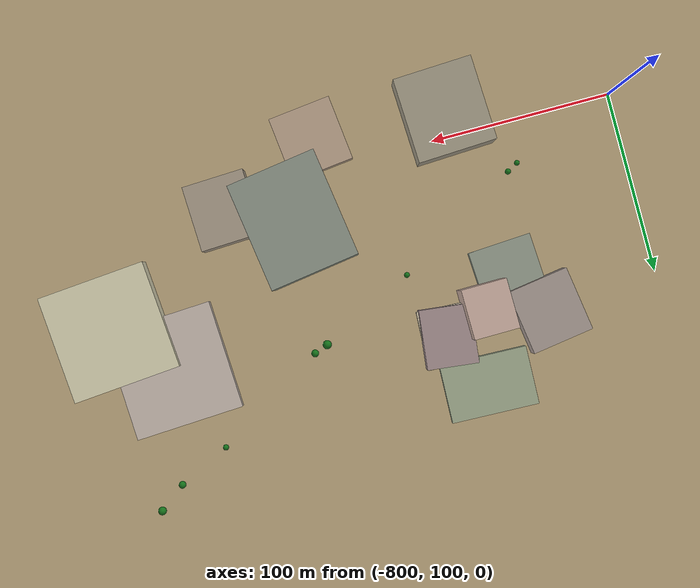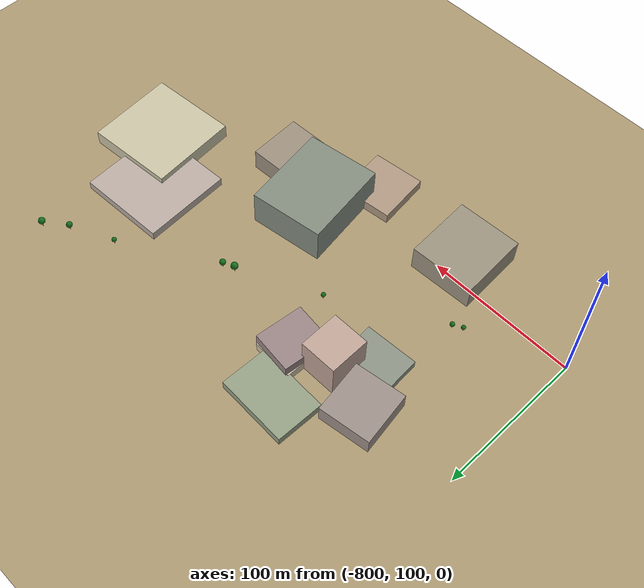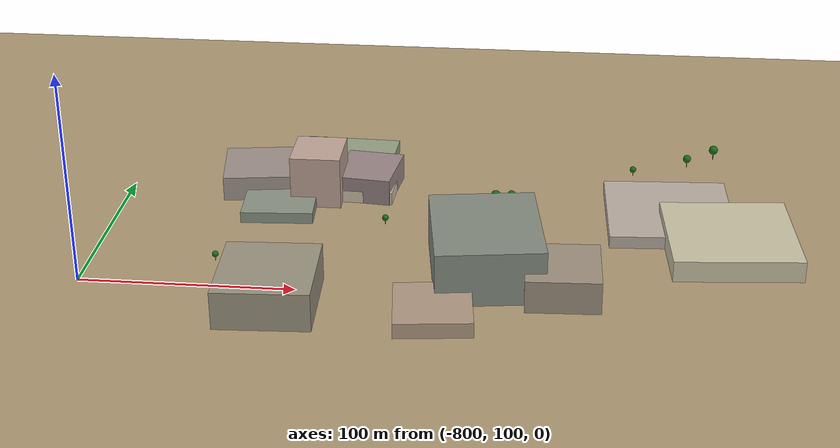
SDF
<sdf version="1.9">
 <world name="crossroad_world">
  <model name="ground_plane">
   <static>true</static>
   <pose>0 0 -0.05 0 0 0</pose>
   <link name="link">
    <collision name="collision">
     <geometry><plane><normal>0 0 1</normal><size>10000 10000</size></plane></geometry>
    </collision>
    <visual name="visual">
     <geometry><plane><normal>0 0 1</normal><size>15000 15000</size></plane></geometry>
     <material><ambient>0.68 0.60 0.45 1</ambient><diffuse>0.68 0.60 0.45 1</diffuse></material>
    </visual>
   </link>
  </model>
  <model name="tree_342">
   <static>true</static>
   <pose>-506.073 256.644 0 0 0 0</pose>
   <link name="link">
    <visual name="trunk">
     <pose>0 0 1.936 0 0 0</pose>
     <geometry><cylinder><radius>0.169</radius><length>3.872</length></cylinder></geometry>
     <material><ambient>0.38 0.22 0.08 1</ambient><diffuse>0.38 0.22 0.08 1</diffuse></material>
    </visual>
    <visual name="canopy">
     <pose>0 0 5.366 0 0 0</pose>
     <geometry><sphere><radius>2.299</radius></sphere></geometry>
     <material><ambient>0.08 0.44 0.10 1</ambient><diffuse>0.08 0.44 0.10 1</diffuse></material>
    </visual>
    <collision name="col">
     <pose>0 0 1.936 0 0 0</pose>
     <geometry><cylinder><radius>0.169</radius><length>3.872</length></cylinder></geometry>
    </collision>
   </link>
  </model>
  <model name="tree_344">
   <static>true</static>
   <pose>-548.173 232.421 0 0 0 0</pose>
   <link name="link">
    <visual name="trunk">
     <pose>0 0 1.353 0 0 0</pose>
     <geometry><cylinder><radius>0.118</radius><length>2.706</length></cylinder></geometry>
     <material><ambient>0.38 0.22 0.08 1</ambient><diffuse>0.38 0.22 0.08 1</diffuse></material>
    </visual>
    <visual name="canopy">
     <pose>0 0 3.750 0 0 0</pose>
     <geometry><sphere><radius>1.606</radius></sphere></geometry>
     <material><ambient>0.08 0.44 0.10 1</ambient><diffuse>0.08 0.44 0.10 1</diffuse></material>
    </visual>
    <collision name="col">
     <pose>0 0 1.353 0 0 0</pose>
     <geometry><cylinder><radius>0.118</radius><length>2.706</length></cylinder></geometry>
    </collision>
   </link>
  </model>
  <model name="tree_345">
   <static>true</static>
   <pose>-608.494 195.484 0 0 0 0</pose>
   <link name="link">
    <visual name="trunk">
     <pose>0 0 1.734 0 0 0</pose>
     <geometry><cylinder><radius>0.152</radius><length>3.469</length></cylinder></geometry>
     <material><ambient>0.38 0.22 0.08 1</ambient><diffuse>0.38 0.22 0.08 1</diffuse></material>
    </visual>
    <visual name="canopy">
     <pose>0 0 4.808 0 0 0</pose>
     <geometry><sphere><radius>2.060</radius></sphere></geometry>
     <material><ambient>0.08 0.44 0.10 1</ambient><diffuse>0.08 0.44 0.10 1</diffuse></material>
    </visual>
    <collision name="col">
     <pose>0 0 1.734 0 0 0</pose>
     <geometry><cylinder><radius>0.152</radius><length>3.469</length></cylinder></geometry>
    </collision>
   </link>
  </model>
  <model name="tree_347">
   <static>true</static>
   <pose>-667.843 167.182 0 0 0 0</pose>
   <link name="link">
    <visual name="trunk">
     <pose>0 0 1.287 0 0 0</pose>
     <geometry><cylinder><radius>0.113</radius><length>2.574</length></cylinder></geometry>
     <material><ambient>0.38 0.22 0.08 1</ambient><diffuse>0.38 0.22 0.08 1</diffuse></material>
    </visual>
    <visual name="canopy">
     <pose>0 0 3.568 0 0 0</pose>
     <geometry><sphere><radius>1.529</radius></sphere></geometry>
     <material><ambient>0.08 0.44 0.10 1</ambient><diffuse>0.08 0.44 0.10 1</diffuse></material>
    </visual>
    <collision name="col">
     <pose>0 0 1.287 0 0 0</pose>
     <geometry><cylinder><radius>0.113</radius><length>2.574</length></cylinder></geometry>
    </collision>
   </link>
  </model>
  <model name="tree_356">
   <static>true</static>
   <pose>-741.661 123.684 0 0 0 0</pose>
   <link name="link">
    <visual name="trunk">
     <pose>0 0 1.241 0 0 0</pose>
     <geometry><cylinder><radius>0.109</radius><length>2.481</length></cylinder></geometry>
     <material><ambient>0.38 0.22 0.08 1</ambient><diffuse>0.38 0.22 0.08 1</diffuse></material>
    </visual>
    <visual name="canopy">
     <pose>0 0 3.439 0 0 0</pose>
     <geometry><sphere><radius>1.473</radius></sphere></geometry>
     <material><ambient>0.08 0.44 0.10 1</ambient><diffuse>0.08 0.44 0.10 1</diffuse></material>
    </visual>
    <collision name="col">
     <pose>0 0 1.241 0 0 0</pose>
     <geometry><cylinder><radius>0.109</radius><length>2.481</length></cylinder></geometry>
    </collision>
   </link>
  </model>
  <model name="tree_358">
   <static>true</static>
   <pose>-735.681 126.987 0 0 0 0</pose>
   <link name="link">
    <visual name="trunk">
     <pose>0 0 1.373 0 0 0</pose>
     <geometry><cylinder><radius>0.120</radius><length>2.746</length></cylinder></geometry>
     <material><ambient>0.38 0.22 0.08 1</ambient><diffuse>0.38 0.22 0.08 1</diffuse></material>
    </visual>
    <visual name="canopy">
     <pose>0 0 3.806 0 0 0</pose>
     <geometry><sphere><radius>1.631</radius></sphere></geometry>
     <material><ambient>0.08 0.44 0.10 1</ambient><diffuse>0.08 0.44 0.10 1</diffuse></material>
    </visual>
    <collision name="col">
     <pose>0 0 1.373 0 0 0</pose>
     <geometry><cylinder><radius>0.120</radius><length>2.746</length></cylinder></geometry>
    </collision>
   </link>
  </model>
  <model name="tree_362">
   <static>true</static>
   <pose>-520.183 245.831 0 0 0 0</pose>
   <link name="link">
    <visual name="trunk">
     <pose>0 0 1.710 0 0 0</pose>
     <geometry><cylinder><radius>0.150</radius><length>3.420</length></cylinder></geometry>
     <material><ambient>0.38 0.22 0.08 1</ambient><diffuse>0.38 0.22 0.08 1</diffuse></material>
    </visual>
    <visual name="canopy">
     <pose>0 0 4.740 0 0 0</pose>
     <geometry><sphere><radius>2.031</radius></sphere></geometry>
     <material><ambient>0.08 0.44 0.10 1</ambient><diffuse>0.08 0.44 0.10 1</diffuse></material>
    </visual>
    <collision name="col">
     <pose>0 0 1.710 0 0 0</pose>
     <geometry><cylinder><radius>0.150</radius><length>3.420</length></cylinder></geometry>
    </collision>
   </link>
  </model>
  <model name="tree_364">
   <static>true</static>
   <pose>-616.069 192.531 0 0 0 0</pose>
   <link name="link">
    <visual name="trunk">
     <pose>0 0 2.033 0 0 0</pose>
     <geometry><cylinder><radius>0.178</radius><length>4.067</length></cylinder></geometry>
     <material><ambient>0.38 0.22 0.08 1</ambient><diffuse>0.38 0.22 0.08 1</diffuse></material>
    </visual>
    <visual name="canopy">
     <pose>0 0 5.636 0 0 0</pose>
     <geometry><sphere><radius>2.415</radius></sphere></geometry>
     <material><ambient>0.08 0.44 0.10 1</ambient><diffuse>0.08 0.44 0.10 1</diffuse></material>
    </visual>
    <collision name="col">
     <pose>0 0 2.033 0 0 0</pose>
     <geometry><cylinder><radius>0.178</radius><length>4.067</length></cylinder></geometry>
    </collision>
   </link>
  </model>
  <model name="building_164">
   <static>true</static>
   <pose>-616.115 123.576 12.820 0 0 0.146</pose>
   <link name="link">
    <visual name="body">
     <geometry><box><size>49.57 60.00 25.64</size></box></geometry>
     <material><ambient>0.52 0.55 0.50 1</ambient><diffuse>0.52 0.55 0.50 1</diffuse></material>
    </visual>
    <collision name="col"><geometry><box><size>49.57 60.00 25.64</size></box></geometry></collision>
   </link>
  </model>
  <model name="building_405">
   <static>true</static>
   <pose>-503.847 155.429 5.136 0 0 0.083</pose>
   <link name="link">
    <visual name="body">
     <geometry><box><size>60.00 60.00 10.27</size></box></geometry>
     <material><ambient>0.79 0.77 0.65 1</ambient><diffuse>0.79 0.77 0.65 1</diffuse></material>
    </visual>
    <collision name="col"><geometry><box><size>60.00 60.00 10.27</size></box></geometry></collision>
   </link>
  </model>
  <model name="building_406">
   <static>true</static>
   <pose>-709.546 87.063 9.028 0 0 0.046</pose>
   <link name="link">
    <visual name="body">
     <geometry><box><size>43.44 46.71 18.06</size></box></geometry>
     <material><ambient>0.61 0.58 0.50 1</ambient><diffuse>0.61 0.58 0.50 1</diffuse></material>
    </visual>
    <collision name="col"><geometry><box><size>43.44 46.71 18.06</size></box></geometry></collision>
   </link>
  </model>
  <model name="building_408">
   <static>true</static>
   <pose>-636.330 82.278 3.601 0 0 0.113</pose>
   <link name="link">
    <visual name="body">
     <geometry><box><size>34.85 36.06 7.20</size></box></geometry>
     <material><ambient>0.69 0.60 0.51 1</ambient><diffuse>0.69 0.60 0.51 1</diffuse></material>
    </visual>
    <collision name="col"><geometry><box><size>34.85 36.06 7.20</size></box></geometry></collision>
   </link>
  </model>
  <model name="building_414">
   <static>true</static>
   <pose>-736.996 205.693 6.062 0 0 0.148</pose>
   <link name="link">
    <visual name="body">
     <geometry><box><size>34.15 35.82 12.12</size></box></geometry>
     <material><ambient>0.62 0.57 0.54 1</ambient><diffuse>0.62 0.57 0.54 1</diffuse></material>
    </visual>
    <collision name="col"><geometry><box><size>34.15 35.82 12.12</size></box></geometry></collision>
   </link>
  </model>
  <model name="building_539">
   <static>true</static>
   <pose>-531.547 184.591 2.999 0 0 0.052</pose>
   <link name="link">
    <visual name="body">
     <geometry><box><size>60.00 60.00 6.00</size></box></geometry>
     <material><ambient>0.73 0.68 0.64 1</ambient><diffuse>0.73 0.68 0.64 1</diffuse></material>
    </visual>
    <collision name="col"><geometry><box><size>60.00 60.00 6.00</size></box></geometry></collision>
   </link>
  </model>
  <model name="building_540">
   <static>true</static>
   <pose>-721.702 181.876 2.712 0 0 0.060</pose>
   <link name="link">
    <visual name="body">
     <geometry><box><size>35.04 36.81 5.42</size></box></geometry>
     <material><ambient>0.55 0.58 0.52 1</ambient><diffuse>0.55 0.58 0.52 1</diffuse></material>
    </visual>
    <collision name="col"><geometry><box><size>35.04 36.81 5.42</size></box></geometry></collision>
   </link>
  </model>
  <model name="building_541">
   <static>true</static>
   <pose>-680.618 205.030 3.096 0 0 -0.046</pose>
   <link name="link">
    <visual name="body">
     <geometry><box><size>28.06 32.37 6.19</size></box></geometry>
     <material><ambient>0.82 0.77 0.67 1</ambient><diffuse>0.82 0.77 0.67 1</diffuse></material>
    </visual>
    <collision name="col"><geometry><box><size>28.06 32.37 6.19</size></box></geometry></collision>
   </link>
  </model>
  <model name="building_542">
   <static>true</static>
   <pose>-680.618 205.030 6.540 0 0 -0.111</pose>
   <link name="link">
    <visual name="body">
     <geometry><box><size>28.06 32.37 13.08</size></box></geometry>
     <material><ambient>0.61 0.53 0.53 1</ambient><diffuse>0.61 0.53 0.53 1</diffuse></material>
    </visual>
    <collision name="col"><geometry><box><size>28.06 32.37 13.08</size></box></geometry></collision>
   </link>
  </model>
  <model name="building_544">
   <static>true</static>
   <pose>-580.652 108.076 7.725 0 0 0.042</pose>
   <link name="link">
    <visual name="body">
     <geometry><box><size>33.89 35.94 15.45</size></box></geometry>
     <material><ambient>0.62 0.57 0.50 1</ambient><diffuse>0.62 0.57 0.50 1</diffuse></material>
    </visual>
    <collision name="col"><geometry><box><size>33.89 35.94 15.45</size></box></geometry></collision>
   </link>
  </model>
  <model name="building_586">
   <static>true</static>
   <pose>-695.553 236.344 3.055 0 0 -0.032</pose>
   <link name="link">
    <visual name="body">
     <geometry><box><size>48.26 32.05 6.11</size></box></geometry>
     <material><ambient>0.59 0.63 0.52 1</ambient><diffuse>0.59 0.63 0.52 1</diffuse></material>
    </visual>
    <collision name="col"><geometry><box><size>48.26 32.05 6.11</size></box></geometry></collision>
   </link>
  </model>
  <model name="building_587">
   <static>true</static>
   <pose>-704.556 195.835 12.941 0 0 0.009</pose>
   <link name="link">
    <visual name="body">
     <geometry><box><size>24.80 27.14 25.88</size></box></geometry>
     <material><ambient>0.76 0.65 0.60 1</ambient><diffuse>0.76 0.65 0.60 1</diffuse></material>
    </visual>
    <collision name="col"><geometry><box><size>24.80 27.14 25.88</size></box></geometry></collision>
   </link>
  </model>
 </world>
</sdf>
